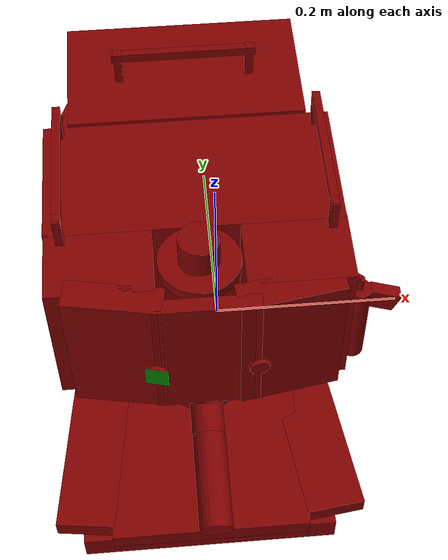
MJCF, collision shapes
<?xml version='1.0' encoding='UTF-8'?>
<mujoco model="model">
  <option timestep="0.002" gravity="0.0 0.0 -9.81"/>
  <compiler angle="radian"/>
  <asset>
    <mesh file="visuals/Body001.obj" name="Body001_vis"/>
    <mesh file="visuals/Body002.obj" name="Body002_vis"/>
    <mesh file="visuals/Button001.obj" name="Button001_vis"/>
    <mesh file="visuals/Button002.obj" name="Button002_vis"/>
    <mesh file="visuals/Container001_Clear.obj" name="Container001_Clear_vis"/>
    <mesh file="visuals/Lever001.obj" name="Lever001_vis"/>
    <mesh file="visuals/Lever002.obj" name="Lever002_vis"/>
    <mesh file="visuals/Lid001.obj" name="Lid001_vis"/>
    <mesh file="visuals/Lid002.obj" name="Lid002_vis"/>
    <mesh file="visuals/Lid003.obj" name="Lid003_vis"/>
    <texture file="visuals/T_BC001.png" name="Body001_material" type="2d"/>
    <material name="Body001_material" rgba="1 1 1 1.0" texture="Body001_material" shininess="0.141421377658844" specular="0.5"/>
    <texture file="visuals/T_BC001.png" name="Body002_material" type="2d"/>
    <material name="Body002_material" rgba="1 1 1 1.0" texture="Body002_material" shininess="0.141421377658844" specular="0.3103448502657381"/>
    <texture file="visuals/T_BC001.png" name="Button001_material" type="2d"/>
    <material name="Button001_material" rgba="1 1 1 1.0" texture="Button001_material" shininess="0.141421377658844" specular="0.3103448502657381"/>
    <texture file="visuals/T_BC001.png" name="Button002_material" type="2d"/>
    <material name="Button002_material" rgba="1 1 1 1.0" texture="Button002_material" shininess="0.141421377658844" specular="0.3103448502657381"/>
    <texture file="visuals/T_BC001.png" name="Container001_Clear_material" type="2d"/>
    <material name="Container001_Clear_material" rgba="1 1 1 0.15410959720611572" texture="Container001_Clear_material" shininess="0.141421377658844" specular="0.3103448502657381"/>
    <texture file="visuals/T_BC001.png" name="Lid003_material" type="2d"/>
    <material name="Lid003_material" rgba="1 1 1 1.0" texture="Lid003_material" shininess="0.141421377658844" specular="0.3103448502657381"/>
    <texture file="visuals/T_BC001.png" name="Lever001_material" type="2d"/>
    <material name="Lever001_material" rgba="1 1 1 1.0" texture="Lever001_material" shininess="0.141421377658844" specular="0.3103448502657381"/>
    <texture file="visuals/T_BC001.png" name="Lever002_material" type="2d"/>
    <material name="Lever002_material" rgba="1 1 1 1.0" texture="Lever002_material" shininess="0.141421377658844" specular="0.3103448502657381"/>
    <texture file="visuals/T_BC001.png" name="Lid001_material" type="2d"/>
    <material name="Lid001_material" rgba="1 1 1 1.0" texture="Lid001_material" shininess="0.141421377658844" specular="0.3103448502657381"/>
    <texture file="visuals/T_BC001.png" name="Lid002_material" type="2d"/>
    <material name="Lid002_material" rgba="1 1 1 1.0" texture="Lid002_material" shininess="0.141421377658844" specular="0.3103448502657381"/>
  </asset>
  <default>
    <default class="visual">
      <geom conaffinity="0" contype="0" group="1" type="mesh"/>
    </default>
    <default class="collision">
      <geom group="0" rgba="0.5 0 0 0.5"/>
    </default>
    <default class="spawn">
      <geom group="0" rgba="1 1 1 0.5" contype="0" conaffinity="0"/>
      <site group="0" rgba="1 1 1 0.5"/>
    </default>
    <default class="region">
      <geom group="1" conaffinity="0" contype="0" rgba="0 1 0 0"/>
    </default>
  </default>
  <worldbody>
    <body>
      <body name="object">
        <geom class="collision" type="box" pos="-0.06851377 -0.14472453 0.10093635" size="0.01161577645689249 0.01161577831953764 0.0006928828661330044" quat="0.702582061290741 0.7025821805000305 -0.0798647403717041 -0.07986466586589813" name="start_button" rgba="0.0 0.5 0 0.5"/>
        <geom mesh="Body001_vis" type="mesh" solimp="0.998 0.998 0.001" solref="0.001 1" friction="0.95 0.3 0.1" class="visual" material="Body001_material"/>
        <geom class="collision" type="box" pos="-0.02163521 0.03640603 0.11111818" size="0.14729458093643188 0.07128486782312393 0.08131664246320724" quat="1.0 0.0 0.0 0.0"/>
        <geom class="collision" type="box" pos="-0.02082537 0.06172078 -0.06908069" size="0.07219202071428299 0.04597011208534241 0.10204217582941055" quat="1.0 0.0 0.0 0.0"/>
        <geom class="collision" type="box" pos="-0.11601098 -0.06924471 0.11111818" size="0.05208364874124527 0.03787752240896225 0.08131664246320724" quat="1.0 0.0 0.0 0.0"/>
        <geom class="collision" type="box" pos="0.07399333 -0.06924471 0.11111818" size="0.05208364874124527 0.03787752240896225 0.08131664246320724" quat="1.0 0.0 0.0 0.0"/>
        <geom class="collision" type="box" pos="0.06277823 -0.11316236 0.11111818" size="0.052083682268857956 0.015003768727183342 0.08131664246320724" quat="0.9967190623283386 0.0 0.0 0.08093922585248947"/>
        <geom class="collision" type="box" pos="-0.10416435 -0.11106266 0.11111818" size="0.04719240590929985 0.015003764070570469 0.08131664246320724" quat="0.9956870675086975 0.0 0.0 -0.09277521073818207"/>
        <geom class="collision" type="box" pos="-0.01760342 -0.12621827 0.11111818" size="0.0520988330245018 0.007789118681102991 0.08131664246320724" quat="1.0 0.0 0.0 0.0"/>
        <geom class="collision" type="box" pos="-0.02290577 -0.03427400 -0.21167439" size="0.14666631817817688 0.14196491241455078 0.016575034707784653" quat="1.0 0.0 0.0 0.0"/>
        <geom class="collision" type="box" pos="-0.02023041 0.17114095 -0.18785821" size="0.12354644387960434 0.05990883335471153 0.0403912253677845" quat="1.0 0.0 0.0 0.0"/>
        <geom class="collision" type="box" pos="0.11046250 0.02601457 0.22416213" size="0.004120701923966408 0.07563477754592896 0.004648058675229549" quat="1.0 0.0 0.0 0.0"/>
        <geom class="collision" type="box" pos="-0.15160507 0.02601457 0.22416213" size="0.004120701923966408 0.07563477754592896 0.004648058675229549" quat="1.0 0.0 0.0 0.0"/>
        <geom class="collision" type="box" pos="-0.15160507 -0.04236708 0.20961033" size="0.004120714496821165 0.004648073576390743 0.019215311855077744" quat="1.0 0.0 0.0 0.0"/>
        <geom class="collision" type="box" pos="-0.15160507 0.09574743 0.20961033" size="0.004120712634176016 0.004648071713745594 0.019215304404497147" quat="1.0 0.0 0.0 0.0"/>
        <geom class="collision" type="box" pos="0.11044031 0.09574743 0.20961033" size="0.004120710771530867 0.004648069851100445 0.01921529695391655" quat="1.0 0.0 0.0 0.0"/>
        <geom class="collision" type="box" pos="0.11044031 -0.04236708 0.20961033" size="0.004120708908885717 0.0046480679884552956 0.019215289503335953" quat="1.0 0.0 0.0 0.0"/>
        <body name="Body002">
          <geom mesh="Body002_vis" type="mesh" solimp="0.998 0.998 0.001" solref="0.001 1" friction="0.95 0.3 0.1" class="visual" material="Body002_material"/>
        </body>
        <body name="Button001">
          <joint axis="0.13058799505233765 0.9914366602897644 0.0" pos="-0.06714199 -0.13878882 0.06470982" limited="true" name="Button001_joint" range="0.0 0.004" type="slide" damping="1" frictionloss="1" armature=".01" stiffness="0.05"/>
          <geom mesh="Button001_vis" type="mesh" solimp="0.998 0.998 0.001" solref="0.001 1" friction="0.95 0.3 0.1" class="visual" material="Button001_material"/>
          <geom class="collision" type="cylinder" pos="-0.06793988 -0.14153738 0.10121736" size="0.01213991828262806 0.0022727176547050476" quat="0.702582061290741 0.7025821805000305 -0.0798647403717041 -0.07986466586589813"/>
        </body>
        <body name="Button002">
          <joint axis="-0.17947769165039062 0.9837620258331299 0.0" pos="0.03098998 -0.13715276 0.06545520" limited="true" name="Button002_joint" range="0.0 0.004" type="slide" damping="1" frictionloss="1" armature=".01" stiffness="0.05"/>
          <geom mesh="Button002_vis" type="mesh" solimp="0.998 0.998 0.001" solref="0.001 1" friction="0.95 0.3 0.1" class="visual" material="Button002_material"/>
          <geom class="collision" type="cylinder" pos="0.03177396 -0.14068343 0.10121739" size="0.010313350707292557 0.0019307654583826661" quat="0.7055003046989441 0.7055003046989441 0.04763747379183769 0.04763757437467575"/>
        </body>
        <body name="Container001_Clear">
          <geom mesh="Container001_Clear_vis" type="mesh" solimp="0.998 0.998 0.001" solref="0.001 1" friction="0.95 0.3 0.1" class="visual" material="Container001_Clear_material"/>
          <geom class="collision" type="box" pos="-0.02047764 0.23871578 0.01626394" size="0.036769669502973557 0.014528339728713036 0.1612497717142105" quat="1.0 0.0 0.0 0.0"/>
          <geom class="collision" type="box" pos="-0.08412486 0.21961829 0.01626394" size="0.03676966205239296 0.014528336003422737 0.1612497717142105" quat="0.9526460766792297 0.0 0.0 0.30408135056495667"/>
          <geom class="collision" type="box" pos="-0.12843588 0.16900820 0.01647081" size="0.03676966577768326 0.01490027830004692 0.1612459272146225" quat="0.8259068131446838 0.00852446723729372 0.005818264093250036 0.5637121796607971"/>
          <geom class="collision" type="box" pos="-0.14209634 0.12770849 0.01677938" size="0.011425700969994068 0.01532344426959753 0.16123221814632416" quat="0.7525190711021423 0.01661069318652153 0.014528759755194187 0.6582006216049194"/>
          <geom class="collision" type="box" pos="0.09754820 0.12687621 0.01660297" size="0.011895114555954933 0.0155493700876832 0.16122081875801086" quat="0.021333536133170128 -0.7523999810218811 0.6580964922904968 -0.01865963824093342"/>
          <geom class="collision" type="box" pos="0.08502971 0.16883384 0.01669396" size="0.03676966577768326 0.015452255494892597 0.1612260490655899" quat="0.02118142694234848 -0.8256791830062866 0.5635567307472229 -0.014457117766141891"/>
          <geom class="collision" type="box" pos="0.04224698 0.21961829 0.01626394" size="0.03676966205239296 0.014528277330100536 0.1612497717142105" quat="1.5482581829928677e-06 0.9526460766792297 -0.30408135056495667 -4.94198673095525e-07"/>
          <geom class="collision" type="box" pos="-0.02182835 0.15044026 0.01599077" size="0.05624181404709816 0.002910513198003173 0.16097204387187958" quat="1.0 0.0 0.0 0.0"/>
          <geom class="collision" type="box" pos="-0.11866945 0.11217980 0.01599077" size="0.026219243183732033 0.002910513198003173 0.16097204387187958" quat="1.0 0.0 0.0 0.0"/>
          <geom class="collision" type="box" pos="0.07735524 0.11217980 0.01599077" size="0.026219243183732033 0.002910513198003173 0.16097204387187958" quat="1.0 0.0 0.0 0.0"/>
          <geom class="collision" type="box" pos="-0.08602768 0.13079251 0.01599077" size="0.022465838119387627 0.00291051366366446 0.16097204387187958" quat="0.8509838581085205 0.0 0.0 0.5251917839050293"/>
          <geom class="collision" type="box" pos="0.04576869 0.13079251 0.01599077" size="0.022465838119387627 0.002910572336986661 0.16097204387187958" quat="1.3830346006216132e-06 0.8509838581085205 -0.5251917839050293 -8.535519100405509e-07"/>
          <geom class="collision" type="box" pos="-0.02023041 0.17269528 -0.13848020" size="0.12354644387960434 0.061463166028261185 0.006055094301700592" quat="1.0 0.0 0.0 0.0"/>
          <geom class="collision" type="box" pos="-0.01719460 0.13026933 0.02387353" size="0.06714106351137161 0.01875326968729496 0.15418130159378052" quat="1.0 0.0 0.0 0.0"/>
          <body name="Lid003">
            <geom mesh="Lid003_vis" type="mesh" solimp="0.998 0.998 0.001" solref="0.001 1" friction="0.95 0.3 0.1" class="visual" material="Lid003_material"/>
            <geom class="collision" type="box" pos="-0.02023041 0.18231782 0.18659550" size="0.12354644387960434 0.07108570635318756 0.006055094301700592" quat="1.0 0.0 0.0 0.0"/>
            <geom class="collision" type="box" pos="-0.01926394 0.17440696 0.22416213" size="0.07563477754592896 0.004120714031159878 0.004648058675229549" quat="1.0 0.0 0.0 0.0"/>
            <geom class="collision" type="box" pos="0.04953714 0.17558178 0.20961033" size="0.004120705649256706 0.004648064263164997 0.01921527460217476" quat="1.0 0.0 0.0 0.0"/>
            <geom class="collision" type="box" pos="-0.08848409 0.17452398 0.20961033" size="0.004120703786611557 0.004648062400519848 0.019215267151594162" quat="1.0 0.0 0.0 0.0"/>
          </body>
        </body>
        <body name="Lever001">
          <joint axis="-1.0 0.0 0.0" pos="0.15914086 -0.02393679 0.08542049" limited="true" name="Lever001_joint" range="0.0 1.0471975511965976" type="hinge" damping="1" frictionloss="1" armature=".01"/>
          <geom mesh="Lever001_vis" type="mesh" solimp="0.998 0.998 0.001" solref="0.001 1" friction="0.95 0.3 0.1" class="visual" material="Lever001_material"/>
          <geom class="collision" type="cylinder" pos="0.15189716 -0.02412339 0.00091045" size="0.01282657589763403 0.05715467035770416" quat="1.0 0.0 0.0 0.0" density="0.001"/>
          <geom class="collision" type="cylinder" pos="0.13393858 -0.02412339 0.08434787" size="0.003835783340036869 0.0054209246300160885" quat="0.707107424736023 0.0 -0.7071061730384827 0.0" density="0.001"/>
          <geom class="collision" type="cylinder" pos="0.14434600 -0.02412339 0.08062973" size="0.0038357789162546396 0.007584305014461279" quat="0.8966025114059448 0.0 -0.4428362548351288 0.0" density="0.001"/>
          <geom class="collision" type="cylinder" pos="0.15186486 -0.02412339 0.06715249" size="0.0038357796147465706 0.008536911569535732" quat="0.9999951720237732 0.0 -0.003102303948253393 0.0" density="0.001"/>
          <geom class="collision" type="box" pos="0.17662802 -0.02335528 0.03956041" size="0.011908872053027153 0.007407616823911667 0.018119605258107185" quat="0.8306339383125305 0.0 -0.5568189024925232 0.0" density="0.001"/>
        </body>
        <body name="Lever002">
          <joint axis="0.0 0.0 -1.0" pos="-0.02073356 -0.07398145 -0.00369820" limited="true" name="Lever002_joint" range="0.0 1.5707963267948966" type="hinge" damping="1" frictionloss="1" armature=".01"/>
          <geom mesh="Lever002_vis" type="mesh" solimp="0.998 0.998 0.001" solref="0.001 1" friction="0.95 0.3 0.1" class="visual" material="Lever002_material"/>
          <geom class="collision" type="cylinder" pos="-0.02065712 -0.07357222 0.00001544" size="0.037973616272211075 0.026336975395679474" quat="1.0 0.0 0.0 0.0" density="0.001"/>
          <geom class="collision" type="cylinder" pos="-0.02065712 -0.07357222 0.02286494" size="0.054769620299339294 0.005931091960519552" quat="1.0 0.0 0.0 0.0" density="0.001"/>
          <geom class="collision" type="cylinder" pos="-0.02065712 -0.13285333 -0.00336023" size="0.01731661520898342 0.026336969807744026" quat="0.7071068286895752 -0.7071067690849304 0.0 0.0" density="0.001"/>
          <geom class="collision" type="cylinder" pos="-0.02065712 -0.20532449 -0.01004819" size="0.01731661520898342 0.04982971027493477" quat="0.7645754814147949 -0.6445342302322388 0.0 0.0" density="0.001"/>
        </body>
        <body name="Lid001">
          <geom mesh="Lid001_vis" type="mesh" solimp="0.998 0.998 0.001" solref="0.001 1" friction="0.95 0.3 0.1" class="visual" material="Lid001_material"/>
          <geom class="collision" type="box" pos="-0.02216476 -0.08613583 -0.18043082" size="0.11271115392446518 0.1000392809510231 0.011030240915715694" quat="1.0 0.0 0.0 0.0"/>
          <geom class="collision" type="box" pos="-0.14753067 -0.03097074 -0.18043082" size="0.03376486152410507 0.13839538395404816 0.011030261404812336" quat="0.9978577494621277 0.0 0.0 -0.06542115658521652"/>
          <geom class="collision" type="box" pos="0.10537225 -0.03097074 -0.18043082" size="0.03373399376869202 0.13839946687221527 0.011030261404812336" quat="1.6217370557569666e-06 0.9978577494621277 0.06542112678289413 1.0632376756802842e-07"/>
        </body>
        <body name="Lid002">
          <geom mesh="Lid002_vis" type="mesh" solimp="0.998 0.998 0.001" solref="0.001 1" friction="0.95 0.3 0.1" class="visual" material="Lid002_material"/>
          <geom class="collision" type="cylinder" pos="-0.02073353 -0.07620388 0.18948322" size="0.04043174162507057 0.005663868971168995" quat="1.0 0.0 0.0 0.0"/>
          <geom class="collision" type="cylinder" pos="-0.02073353 -0.07620388 0.20999062" size="0.02013886347413063 0.0163128599524498" quat="1.0 0.0 0.0 0.0"/>
        </body>
        <site type="cylinder" rgba="0.8 0.5 0.25 1" size="0.0024676781613379717 0.09731047600507736" pos="-0.02058796 -0.07405180 -0.12309054" name="coffee_liquid"/>
        <site rgba="0 0 0 0" size="0.009999999776482582 0.009999999776482582" pos="-0.02058796 -0.07405180 -0.16756200" name="receptacle_place_site"/>
        <geom class="region" name="reg_main" type="box" pos="-0.020991684999999996 0.03226541000000001 2.999999999808711e-08" size="0.17431522500000002 0.22081885 0.22929782999999998"/>
      </body>
    </body>
  </worldbody>
  <actuator>
    <motor name="Button001_joint_actuator" joint="Button001_joint" gear="0.5"/>
    <motor name="Button002_joint_actuator" joint="Button002_joint" gear="0.5"/>
    <motor name="Lever001_joint_actuator" joint="Lever001_joint" gear="10"/>
    <motor name="Lever002_joint_actuator" joint="Lever002_joint" gear="10"/>
  </actuator>
</mujoco>
